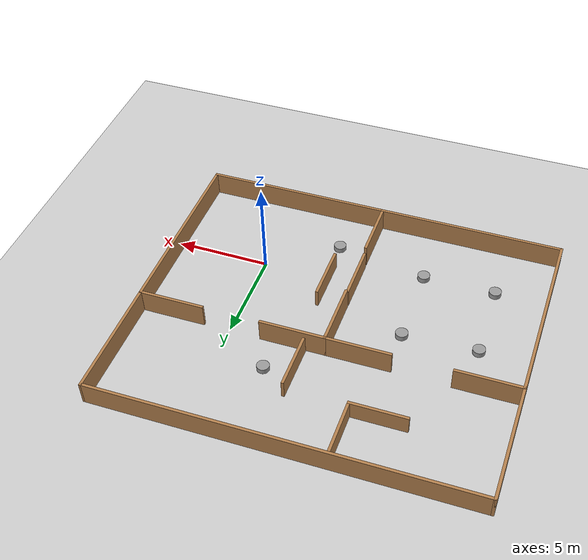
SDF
<sdf version="1.6">
 <world name="default">
  <model name="ground_plane">
   <static>1</static>
   <link name="link">
    <collision name="collision">
     <geometry><plane><normal>0 0 1</normal><size>100 100</size></plane></geometry>
     <surface><friction><ode><mu>100</mu><mu2>50</mu2></ode></friction></surface>
    </collision>
    <visual name="visual">
     <cast_shadows>0</cast_shadows>
     <geometry><plane><normal>0 0 1</normal><size>100 100</size></plane></geometry>
     <material>
      <script><uri>file://media/materials/scripts/gazebo.material</uri><name>Gazebo/Grey</name></script>
     </material>
    </visual>
   </link>
  </model>
  <model name="multi_rooms">
   <pose>-5.066 3.299 0 0 -0 0</pose>
   <link name="Wall_11">
    <collision name="Wall_11_Collision">
     <geometry><box><size>3.25 0.15 1.25</size></box></geometry>
     <pose>0 0 0.625 0 -0 0</pose>
    </collision>
    <visual name="Wall_11_Visual">
     <pose>0 0 0.625 0 -0 0</pose>
     <geometry><box><size>3.25 0.15 1.25</size></box></geometry>
     <material>
      <script><uri>file://media/materials/scripts/gazebo.material</uri><name>Gazebo/Wood</name></script>
      <ambient>1 1 1 1</ambient>
     </material>
     <meta><layer>0</layer></meta>
    </visual>
    <pose>0 -6.55 0 0 -0 1.5708</pose>
   </link>
   <link name="Wall_13">
    <collision name="Wall_13_Collision">
     <geometry><box><size>10 0.15 1.25</size></box></geometry>
     <pose>0 0 0.625 0 -0 0</pose>
    </collision>
    <visual name="Wall_13_Visual">
     <pose>0 0 0.625 0 -0 0</pose>
     <geometry><box><size>10 0.15 1.25</size></box></geometry>
     <material>
      <script><uri>file://media/materials/scripts/gazebo.material</uri><name>Gazebo/Wood</name></script>
      <ambient>1 1 1 1</ambient>
     </material>
     <meta><layer>0</layer></meta>
    </visual>
    <pose>-4.925 -8.1 0 0 -0 3.14159</pose>
   </link>
   <link name="Wall_2">
    <collision name="Wall_2_Collision">
     <geometry><box><size>10 0.15 1.25</size></box></geometry>
     <pose>0 0 0.625 0 -0 0</pose>
    </collision>
    <visual name="Wall_2_Visual">
     <pose>0 0 0.625 0 -0 0</pose>
     <geometry><box><size>10 0.15 1.25</size></box></geometry>
     <material>
      <script><uri>file://media/materials/scripts/gazebo.material</uri><name>Gazebo/Wood</name></script>
      <ambient>1 1 1 1</ambient>
     </material>
     <meta><layer>0</layer></meta>
    </visual>
    <pose>4.925 -8.1 0 0 -0 3.14159</pose>
   </link>
   <link name="Wall_20">
    <collision name="Wall_20_Collision">
     <geometry><box><size>3.5 0.15 1.25</size></box></geometry>
     <pose>0 0 0.625 0 -0 0</pose>
    </collision>
    <visual name="Wall_20_Visual">
     <pose>0 0 0.625 0 -0 0</pose>
     <geometry><box><size>3.5 0.15 1.25</size></box></geometry>
     <material>
      <script><uri>file://media/materials/scripts/gazebo.material</uri><name>Gazebo/Wood</name></script>
      <ambient>1 1 1 1</ambient>
     </material>
     <meta><layer>0</layer></meta>
    </visual>
    <pose>-1.675 1.75 0 0 -0 3.14159</pose>
   </link>
   <link name="Wall_22">
    <collision name="Wall_22_Collision">
     <geometry><box><size>3.5 0.15 1.25</size></box></geometry>
     <pose>0 0 0.625 0 -0 0</pose>
    </collision>
    <visual name="Wall_22_Visual">
     <pose>0 0 0.625 0 -0 0</pose>
     <geometry><box><size>3.5 0.15 1.25</size></box></geometry>
     <material>
      <script><uri>file://media/materials/scripts/gazebo.material</uri><name>Gazebo/Wood</name></script>
      <ambient>1 1 1 1</ambient>
     </material>
     <meta><layer>0</layer></meta>
    </visual>
    <pose>1.675 1.75 0 0 -0 0</pose>
   </link>
   <link name="Wall_24">
    <collision name="Wall_24_Collision">
     <geometry><box><size>3.5 0.15 1.25</size></box></geometry>
     <pose>0 0 0.625 0 -0 0</pose>
    </collision>
    <visual name="Wall_24_Visual">
     <pose>0 0 0.625 0 -0 0</pose>
     <geometry><box><size>3.5 0.15 1.25</size></box></geometry>
     <material>
      <script><uri>file://media/materials/scripts/gazebo.material</uri><name>Gazebo/Wood</name></script>
      <ambient>1 1 1 1</ambient>
     </material>
     <meta><layer>0</layer></meta>
    </visual>
    <pose>8.175 1.75 0 0 -0 3.14159</pose>
   </link>
   <link name="Wall_34">
    <collision name="Wall_34_Collision">
     <geometry><box><size>10 0.15 1.25</size></box></geometry>
     <pose>0 0 0.625 0 -0 0</pose>
    </collision>
    <visual name="Wall_34_Visual">
     <pose>0 0 0.625 0 -0 0</pose>
     <geometry><box><size>10 0.15 1.25</size></box></geometry>
     <material>
      <script><uri>file://media/materials/scripts/gazebo.material</uri><name>Gazebo/Wood</name></script>
      <ambient>1 1 1 1</ambient>
     </material>
     <meta><layer>0</layer></meta>
    </visual>
    <pose>-9.85 -3.175 0 0 -0 1.5708</pose>
   </link>
   <link name="Wall_35">
    <collision name="Wall_35_Collision">
     <geometry><box><size>3.5 0.15 1.25</size></box></geometry>
     <pose>0 0 0.625 0 -0 0</pose>
    </collision>
    <visual name="Wall_35_Visual">
     <pose>0 0 0.625 0 -0 0</pose>
     <geometry><box><size>3.5 0.15 1.25</size></box></geometry>
     <material>
      <script><uri>file://media/materials/scripts/gazebo.material</uri><name>Gazebo/Wood</name></script>
      <ambient>1 1 1 1</ambient>
     </material>
     <meta><layer>0</layer></meta>
    </visual>
    <pose>-8.175 1.75 0 0 -0 0</pose>
   </link>
   <link name="Wall_40">
    <collision name="Wall_40_Collision">
     <geometry><box><size>6.5 0.15 1.25</size></box></geometry>
     <pose>0 0 0.625 0 -0 0</pose>
    </collision>
    <visual name="Wall_40_Visual">
     <pose>0 0 0.625 0 -0 0</pose>
     <geometry><box><size>6.5 0.15 1.25</size></box></geometry>
     <material>
      <script><uri>file://media/materials/scripts/gazebo.material</uri><name>Gazebo/Wood</name></script>
      <ambient>1 1 1 1</ambient>
     </material>
     <meta><layer>0</layer></meta>
    </visual>
    <pose>-9.85 4.925 0 0 -0 1.5708</pose>
   </link>
   <link name="Wall_41">
    <collision name="Wall_41_Collision">
     <geometry><box><size>19.75 0.15 1.25</size></box></geometry>
     <pose>0 0 0.625 0 -0 0</pose>
    </collision>
    <visual name="Wall_41_Visual">
     <pose>0 0 0.625 0 -0 0</pose>
     <geometry><box><size>19.75 0.15 1.25</size></box></geometry>
     <material>
      <script><uri>file://media/materials/scripts/gazebo.material</uri><name>Gazebo/Wood</name></script>
      <ambient>1 1 1 1</ambient>
     </material>
     <meta><layer>0</layer></meta>
    </visual>
    <pose>-0.05 8.1 0 0 -0 0</pose>
   </link>
   <link name="Wall_43">
    <collision name="Wall_43_Collision">
     <geometry><box><size>6.5 0.15 1.25</size></box></geometry>
     <pose>0 0 0.625 0 -0 0</pose>
    </collision>
    <visual name="Wall_43_Visual">
     <pose>0 0 0.625 0 -0 0</pose>
     <geometry><box><size>6.5 0.15 1.25</size></box></geometry>
     <material>
      <script><uri>file://media/materials/scripts/gazebo.material</uri><name>Gazebo/Wood</name></script>
      <ambient>1 1 1 1</ambient>
     </material>
     <meta><layer>0</layer></meta>
    </visual>
    <pose>9.85 4.925 0 0 -0 1.5708</pose>
   </link>
   <link name="Wall_5">
    <collision name="Wall_5_Collision">
     <geometry><box><size>10 0.15 1.25</size></box></geometry>
     <pose>0 0 0.625 0 -0 0</pose>
    </collision>
    <visual name="Wall_5_Visual">
     <pose>0 0 0.625 0 -0 0</pose>
     <geometry><box><size>10 0.15 1.25</size></box></geometry>
     <material>
      <script><uri>file://media/materials/scripts/gazebo.material</uri><name>Gazebo/Wood</name></script>
      <ambient>1 1 1 1</ambient>
     </material>
     <meta><layer>0</layer></meta>
    </visual>
    <pose>9.85 -3.175 0 0 -0 1.5708</pose>
   </link>
   <link name="Wall_9">
    <collision name="Wall_9_Collision">
     <geometry><box><size>3.5 0.15 1.25</size></box></geometry>
     <pose>0 0 0.625 0 -0 0</pose>
    </collision>
    <visual name="Wall_9_Visual">
     <pose>0 0 0.625 0 -0 0</pose>
     <geometry><box><size>3.5 0.15 1.25</size></box></geometry>
     <material>
      <script><uri>file://media/materials/scripts/gazebo.material</uri><name>Gazebo/Wood</name></script>
      <ambient>1 1 1 1</ambient>
     </material>
     <meta><layer>0</layer></meta>
    </visual>
    <pose>0 0.075 0 0 -0 -1.5708</pose>
   </link>
   <static>1</static>
  </model>
  <model name="c0">
   <link name="link">
    <inertial>
     <mass>1</mass>
     <inertia><ixx>0.145833</ixx><ixy>0</ixy><ixz>0</ixz><iyy>0.145833</iyy><iyz>0</iyz><izz>0.125</izz></inertia>
    </inertial>
    <visual name="visual">
     <geometry><cylinder><radius>0.326555</radius><length>0.51474</length></cylinder></geometry>
     <material>
      <script><name>Gazebo/Grey</name><uri>file://media/materials/scripts/gazebo.material</uri></script>
     </material>
    </visual>
    <collision name="collision">
     <geometry><cylinder><radius>0.326555</radius><length>0.51474</length></cylinder></geometry>
     <surface>
      <friction>
       <ode><mu>1</mu><mu2>1</mu2><fdir1>0 0 0</fdir1><slip1>0</slip1><slip2>0</slip2></ode>
       <torsional>
        <coefficient>1</coefficient>
        <patch_radius>0</patch_radius>
        <surface_radius>0</surface_radius>
        <use_patch_radius>1</use_patch_radius>
        <ode><slip>0</slip></ode>
       </torsional>
      </friction>
      <bounce><restitution_coefficient>0</restitution_coefficient><threshold>1e+06</threshold></bounce>
      <contact>
       <collide_without_contact>0</collide_without_contact>
       <collide_without_contact_bitmask>1</collide_without_contact_bitmask>
       <collide_bitmask>1</collide_bitmask>
       <ode>
        <soft_cfm>0</soft_cfm>
        <soft_erp>0.2</soft_erp>
        <kp>1e+13</kp>
        <kd>1</kd>
        <max_vel>0.01</max_vel>
        <min_depth>0</min_depth>
       </ode>
       <bullet>
        <split_impulse>1</split_impulse>
        <split_impulse_penetration_threshold>-0.01</split_impulse_penetration_threshold>
        <soft_cfm>0</soft_cfm>
        <soft_erp>0.2</soft_erp>
        <kp>1e+13</kp>
        <kd>1</kd>
       </bullet>
      </contact>
     </surface>
    </collision>
   </link>
   <static>1</static>
   <pose>-3.39752 -2.43216 0 0 -0 0</pose>
  </model>
  <model name="h_wall_0">
   <pose>-3.59327 0.522539 0 0 -0 0</pose>
   <link name="Wall_0">
    <collision name="Wall_0_Collision">
     <geometry><box><size>3 0.15 1</size></box></geometry>
     <pose>0 0 0.5 0 -0 0</pose>
    </collision>
    <visual name="Wall_0_Visual">
     <pose>0 0 0.5 0 -0 0</pose>
     <geometry><box><size>3 0.15 1</size></box></geometry>
     <material>
      <script><uri>file://media/materials/scripts/gazebo.material</uri><name>Gazebo/Wood</name></script>
      <ambient>1 1 1 1</ambient>
     </material>
     <meta><layer>0</layer></meta>
    </visual>
    <pose>0 0 0 0 -0 -1.5708</pose>
   </link>
   <static>1</static>
  </model>
  <model name="h_wall_1">
   <pose>-4.0315 6.684 0 0 -0 0</pose>
   <link name="Wall_0">
    <collision name="Wall_0_Collision">
     <geometry><box><size>3 0.15 1</size></box></geometry>
     <pose>0 0 0.5 0 -0 0</pose>
    </collision>
    <visual name="Wall_0_Visual">
     <pose>0 0 0.5 0 -0 0</pose>
     <geometry><box><size>3 0.15 1</size></box></geometry>
     <material>
      <script><uri>file://media/materials/scripts/gazebo.material</uri><name>Gazebo/Wood</name></script>
      <ambient>1 1 1 1</ambient>
     </material>
     <meta><layer>0</layer></meta>
    </visual>
    <pose>0 0 0 0 -0 -1.5708</pose>
   </link>
   <static>1</static>
  </model>
  <model name="h_wall_2">
   <pose>-7.34712 9.84942 0 0 -0 0</pose>
   <link name="Wall_0">
    <collision name="Wall_0_Collision">
     <geometry><box><size>3 0.15 1</size></box></geometry>
     <pose>0 0 0.5 0 -0 0</pose>
    </collision>
    <visual name="Wall_0_Visual">
     <pose>0 0 0.5 0 -0 0</pose>
     <geometry><box><size>3 0.15 1</size></box></geometry>
     <material>
      <script><uri>file://media/materials/scripts/gazebo.material</uri><name>Gazebo/Wood</name></script>
      <ambient>1 1 1 1</ambient>
     </material>
     <meta><layer>0</layer></meta>
    </visual>
    <pose>0 0 0 0 -0 -1.5708</pose>
   </link>
   <static>1</static>
  </model>
  <model name="c0_8">
   <link name="link">
    <inertial>
     <mass>1</mass>
     <inertia><ixx>0.145833</ixx><ixy>0</ixy><ixz>0</ixz><iyy>0.145833</iyy><iyz>0</iyz><izz>0.125</izz></inertia>
    </inertial>
    <visual name="visual">
     <geometry><cylinder><radius>0.326555</radius><length>0.51474</length></cylinder></geometry>
     <material>
      <script><name>Gazebo/Grey</name><uri>file://media/materials/scripts/gazebo.material</uri></script>
     </material>
    </visual>
    <collision name="collision">
     <geometry><cylinder><radius>0.326555</radius><length>0.51474</length></cylinder></geometry>
     <surface>
      <friction>
       <ode><mu>1</mu><mu2>1</mu2><fdir1>0 0 0</fdir1><slip1>0</slip1><slip2>0</slip2></ode>
       <torsional>
        <coefficient>1</coefficient>
        <patch_radius>0</patch_radius>
        <surface_radius>0</surface_radius>
        <use_patch_radius>1</use_patch_radius>
        <ode><slip>0</slip></ode>
       </torsional>
      </friction>
      <bounce><restitution_coefficient>0</restitution_coefficient><threshold>1e+06</threshold></bounce>
      <contact>
       <collide_without_contact>0</collide_without_contact>
       <collide_without_contact_bitmask>1</collide_without_contact_bitmask>
       <collide_bitmask>1</collide_bitmask>
       <ode>
        <soft_cfm>0</soft_cfm>
        <soft_erp>0.2</soft_erp>
        <kp>1e+13</kp>
        <kd>1</kd>
        <max_vel>0.01</max_vel>
        <min_depth>0</min_depth>
       </ode>
       <bullet>
        <split_impulse>1</split_impulse>
        <split_impulse_penetration_threshold>-0.01</split_impulse_penetration_threshold>
        <soft_cfm>0</soft_cfm>
        <soft_erp>0.2</soft_erp>
        <kp>1e+13</kp>
        <kd>1</kd>
       </bullet>
      </contact>
     </surface>
    </collision>
   </link>
   <static>1</static>
   <pose>-2.5093 6.8674 0 0 -0 0</pose>
  </model>
  <model name="v_wall_2">
   <pose>-8.77497 8.27634 0 0 -0 0</pose>
   <link name="Wall_0">
    <collision name="Wall_0_Collision">
     <geometry><box><size>3 0.15 1</size></box></geometry>
     <pose>0 0 0.5 0 -0 0</pose>
    </collision>
    <visual name="Wall_0_Visual">
     <pose>0 0 0.5 0 -0 0</pose>
     <geometry><box><size>3 0.15 1</size></box></geometry>
     <material>
      <script><uri>file://media/materials/scripts/gazebo.material</uri><name>Gazebo/Wood</name></script>
      <ambient>1 1 1 1</ambient>
     </material>
     <meta><layer>0</layer></meta>
    </visual>
   </link>
   <static>1</static>
  </model>
  <model name="c0_9">
   <link name="link">
    <inertial>
     <mass>1</mass>
     <inertia><ixx>0.145833</ixx><ixy>0</ixy><ixz>0</ixz><iyy>0.145833</iyy><iyz>0</iyz><izz>0.125</izz></inertia>
    </inertial>
    <visual name="visual">
     <geometry><cylinder><radius>0.326555</radius><length>0.51474</length></cylinder></geometry>
     <material>
      <script><name>Gazebo/Grey</name><uri>file://media/materials/scripts/gazebo.material</uri></script>
     </material>
    </visual>
    <collision name="collision">
     <geometry><cylinder><radius>0.326555</radius><length>0.51474</length></cylinder></geometry>
     <surface>
      <friction>
       <ode><mu>1</mu><mu2>1</mu2><fdir1>0 0 0</fdir1><slip1>0</slip1><slip2>0</slip2></ode>
       <torsional>
        <coefficient>1</coefficient>
        <patch_radius>0</patch_radius>
        <surface_radius>0</surface_radius>
        <use_patch_radius>1</use_patch_radius>
        <ode><slip>0</slip></ode>
       </torsional>
      </friction>
      <bounce><restitution_coefficient>0</restitution_coefficient><threshold>1e+06</threshold></bounce>
      <contact>
       <collide_without_contact>0</collide_without_contact>
       <collide_without_contact_bitmask>1</collide_without_contact_bitmask>
       <collide_bitmask>1</collide_bitmask>
       <ode>
        <soft_cfm>0</soft_cfm>
        <soft_erp>0.2</soft_erp>
        <kp>1e+13</kp>
        <kd>1</kd>
        <max_vel>0.01</max_vel>
        <min_depth>0</min_depth>
       </ode>
       <bullet>
        <split_impulse>1</split_impulse>
        <split_impulse_penetration_threshold>-0.01</split_impulse_penetration_threshold>
        <soft_cfm>0</soft_cfm>
        <soft_erp>0.2</soft_erp>
        <kp>1e+13</kp>
        <kd>1</kd>
       </bullet>
      </contact>
     </surface>
    </collision>
   </link>
   <static>1</static>
   <pose>-12.162 -1.64627 0 0 -0 0</pose>
  </model>
  <model name="c0_10">
   <link name="link">
    <inertial>
     <mass>1</mass>
     <inertia><ixx>0.145833</ixx><ixy>0</ixy><ixz>0</ixz><iyy>0.145833</iyy><iyz>0</iyz><izz>0.125</izz></inertia>
    </inertial>
    <visual name="visual">
     <geometry><cylinder><radius>0.326555</radius><length>0.51474</length></cylinder></geometry>
     <material>
      <script><name>Gazebo/Grey</name><uri>file://media/materials/scripts/gazebo.material</uri></script>
     </material>
    </visual>
    <collision name="collision">
     <geometry><cylinder><radius>0.326555</radius><length>0.51474</length></cylinder></geometry>
     <surface>
      <friction>
       <ode><mu>1</mu><mu2>1</mu2><fdir1>0 0 0</fdir1><slip1>0</slip1><slip2>0</slip2></ode>
       <torsional>
        <coefficient>1</coefficient>
        <patch_radius>0</patch_radius>
        <surface_radius>0</surface_radius>
        <use_patch_radius>1</use_patch_radius>
        <ode><slip>0</slip></ode>
       </torsional>
      </friction>
      <bounce><restitution_coefficient>0</restitution_coefficient><threshold>1e+06</threshold></bounce>
      <contact>
       <collide_without_contact>0</collide_without_contact>
       <collide_without_contact_bitmask>1</collide_without_contact_bitmask>
       <collide_bitmask>1</collide_bitmask>
       <ode>
        <soft_cfm>0</soft_cfm>
        <soft_erp>0.2</soft_erp>
        <kp>1e+13</kp>
        <kd>1</kd>
        <max_vel>0.01</max_vel>
        <min_depth>0</min_depth>
       </ode>
       <bullet>
        <split_impulse>1</split_impulse>
        <split_impulse_penetration_threshold>-0.01</split_impulse_penetration_threshold>
        <soft_cfm>0</soft_cfm>
        <soft_erp>0.2</soft_erp>
        <kp>1e+13</kp>
        <kd>1</kd>
       </bullet>
      </contact>
     </surface>
    </collision>
   </link>
   <static>1</static>
   <pose>-8.33132 2.6653 0 0 -0 0</pose>
  </model>
  <model name="c0_11">
   <link name="link">
    <inertial>
     <mass>1</mass>
     <inertia><ixx>0.145833</ixx><ixy>0</ixy><ixz>0</ixz><iyy>0.145833</iyy><iyz>0</iyz><izz>0.125</izz></inertia>
    </inertial>
    <visual name="visual">
     <geometry><cylinder><radius>0.326555</radius><length>0.51474</length></cylinder></geometry>
     <material>
      <script><name>Gazebo/Grey</name><uri>file://media/materials/scripts/gazebo.material</uri></script>
     </material>
    </visual>
    <collision name="collision">
     <geometry><cylinder><radius>0.326555</radius><length>0.51474</length></cylinder></geometry>
     <surface>
      <friction>
       <ode><mu>1</mu><mu2>1</mu2><fdir1>0 0 0</fdir1><slip1>0</slip1><slip2>0</slip2></ode>
       <torsional>
        <coefficient>1</coefficient>
        <patch_radius>0</patch_radius>
        <surface_radius>0</surface_radius>
        <use_patch_radius>1</use_patch_radius>
        <ode><slip>0</slip></ode>
       </torsional>
      </friction>
      <bounce><restitution_coefficient>0</restitution_coefficient><threshold>1e+06</threshold></bounce>
      <contact>
       <collide_without_contact>0</collide_without_contact>
       <collide_without_contact_bitmask>1</collide_without_contact_bitmask>
       <collide_bitmask>1</collide_bitmask>
       <ode>
        <soft_cfm>0</soft_cfm>
        <soft_erp>0.2</soft_erp>
        <kp>1e+13</kp>
        <kd>1</kd>
        <max_vel>0.01</max_vel>
        <min_depth>0</min_depth>
       </ode>
       <bullet>
        <split_impulse>1</split_impulse>
        <split_impulse_penetration_threshold>-0.01</split_impulse_penetration_threshold>
        <soft_cfm>0</soft_cfm>
        <soft_erp>0.2</soft_erp>
        <kp>1e+13</kp>
        <kd>1</kd>
       </bullet>
      </contact>
     </surface>
    </collision>
   </link>
   <static>1</static>
   <pose>-8.31617 -1.63309 0 0 -0 0</pose>
  </model>
  <model name="c0_12">
   <link name="link">
    <inertial>
     <mass>1</mass>
     <inertia><ixx>0.145833</ixx><ixy>0</ixy><ixz>0</ixz><iyy>0.145833</iyy><iyz>0</iyz><izz>0.125</izz></inertia>
    </inertial>
    <visual name="visual">
     <geometry><cylinder><radius>0.326555</radius><length>0.51474</length></cylinder></geometry>
     <material>
      <script><name>Gazebo/Grey</name><uri>file://media/materials/scripts/gazebo.material</uri></script>
     </material>
    </visual>
    <collision name="collision">
     <geometry><cylinder><radius>0.326555</radius><length>0.51474</length></cylinder></geometry>
     <surface>
      <friction>
       <ode><mu>1</mu><mu2>1</mu2><fdir1>0 0 0</fdir1><slip1>0</slip1><slip2>0</slip2></ode>
       <torsional>
        <coefficient>1</coefficient>
        <patch_radius>0</patch_radius>
        <surface_radius>0</surface_radius>
        <use_patch_radius>1</use_patch_radius>
        <ode><slip>0</slip></ode>
       </torsional>
      </friction>
      <bounce><restitution_coefficient>0</restitution_coefficient><threshold>1e+06</threshold></bounce>
      <contact>
       <collide_without_contact>0</collide_without_contact>
       <collide_without_contact_bitmask>1</collide_without_contact_bitmask>
       <collide_bitmask>1</collide_bitmask>
       <ode>
        <soft_cfm>0</soft_cfm>
        <soft_erp>0.2</soft_erp>
        <kp>1e+13</kp>
        <kd>1</kd>
        <max_vel>0.01</max_vel>
        <min_depth>0</min_depth>
       </ode>
       <bullet>
        <split_impulse>1</split_impulse>
        <split_impulse_penetration_threshold>-0.01</split_impulse_penetration_threshold>
        <soft_cfm>0</soft_cfm>
        <soft_erp>0.2</soft_erp>
        <kp>1e+13</kp>
        <kd>1</kd>
       </bullet>
      </contact>
     </surface>
    </collision>
   </link>
   <static>1</static>
   <pose>-12.2615 2.51028 0 0 -0 0</pose>
  </model>
  <model name="h_wall_1_clone">
   <pose>-5.07674 0.014577 0 0 -0 0</pose>
   <link name="Wall_0">
    <collision name="Wall_0_Collision">
     <geometry><box><size>3 0.15 1</size></box></geometry>
     <pose>0 0 0.5 0 -0 0</pose>
    </collision>
    <visual name="Wall_0_Visual">
     <pose>0 0 0.5 0 -0 0</pose>
     <geometry><box><size>3 0.15 1</size></box></geometry>
     <material>
      <script><uri>file://media/materials/scripts/gazebo.material</uri><name>Gazebo/Wood</name></script>
      <ambient>1 1 1 1</ambient>
     </material>
     <meta><layer>0</layer></meta>
    </visual>
    <pose>0 0 0 0 -0 -1.5708</pose>
   </link>
   <static>1</static>
  </model>
 </world>
</sdf>
